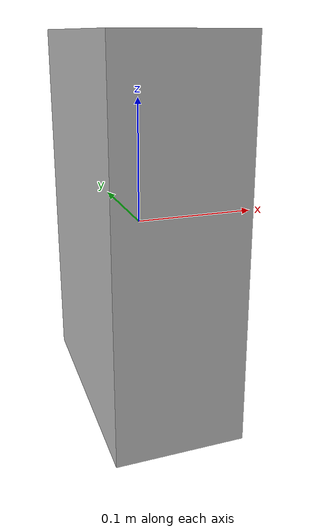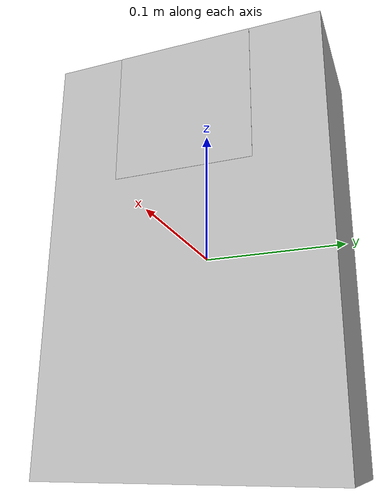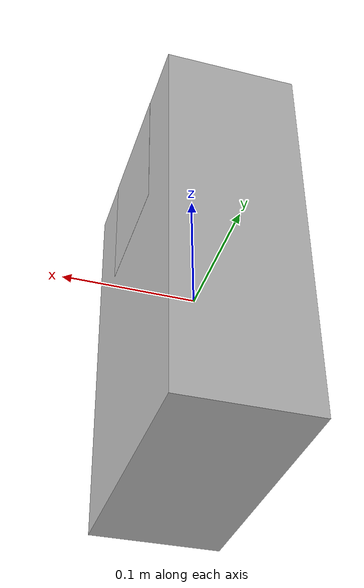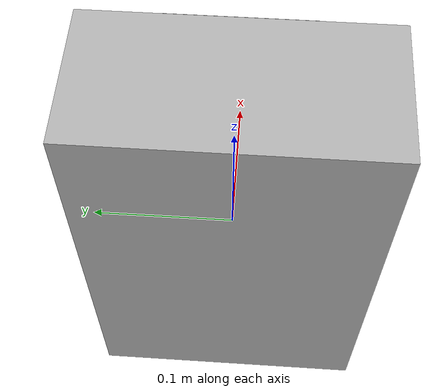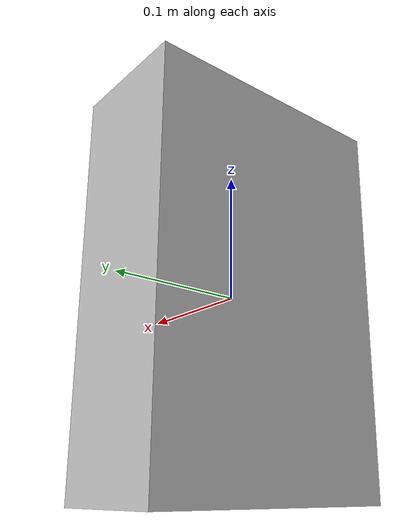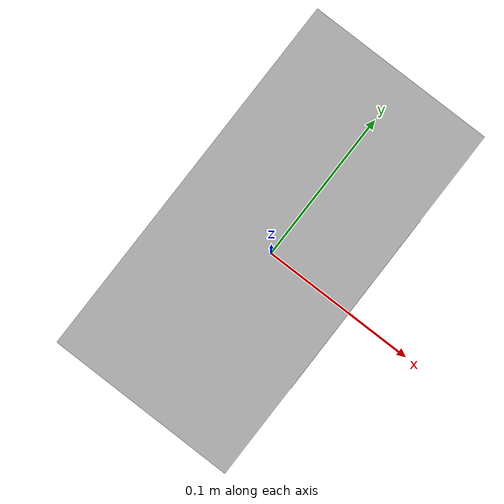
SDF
<?xml version="1.0"?>
<sdf version="1.6">
  <model name="aruco_marker">
    <link name="link">
      <inertial>
        <pose>0 0 0 0 0 0</pose>
        <mass>1</mass>
        <inertia>
          <ixx>0.083</ixx>
          <ixy>0.0</ixy>
          <ixz>0.0</ixz>
          <iyy>0.083</iyy>
          <iyz>0.0</iyz>
          <izz>0.083</izz>
        </inertia>
      </inertial>
      <visual name="front_visual">
        <pose>0.05005 0 0.1 0 0 0</pose>
        <geometry>
          <box>
            <size>0.0001 0.10 0.10</size>
          </box>
        </geometry>
        <material>
          <script>
            <uri>model://aruco_marker_box/materials/scripts</uri>
            <uri>model://aruco_marker_box/materials/textures</uri>
            <name>Marker</name>
          </script>
        </material>
      </visual>
      <!-- Hide the marker from the back -->
      <visual name="rear_visual">
        <pose>-0.00005 0 0 0 0 0</pose>
        <geometry>
          <box>
            <size>0.10 0.20 0.30</size>
          </box>
        </geometry>
      </visual>
      <collision name="collision">
        <pose>0 0 0 0 0 0</pose>
        <geometry>
          <box>
            <size>0.10 0.20 0.30</size>
          </box>
        </geometry>
      </collision>
    </link>
  </model>
</sdf>
